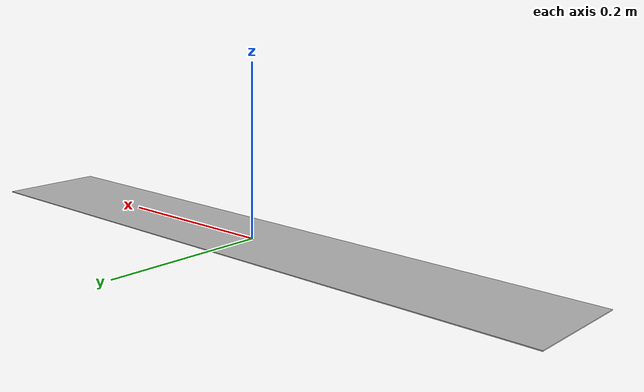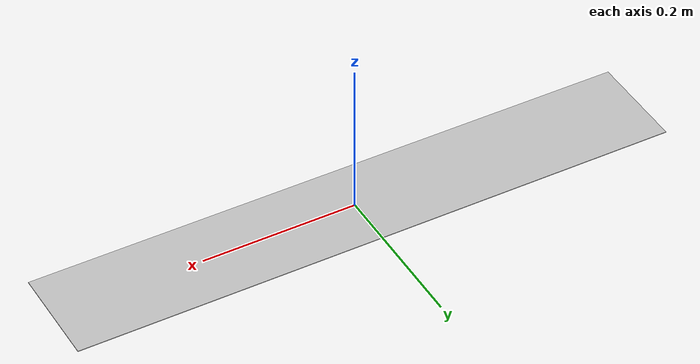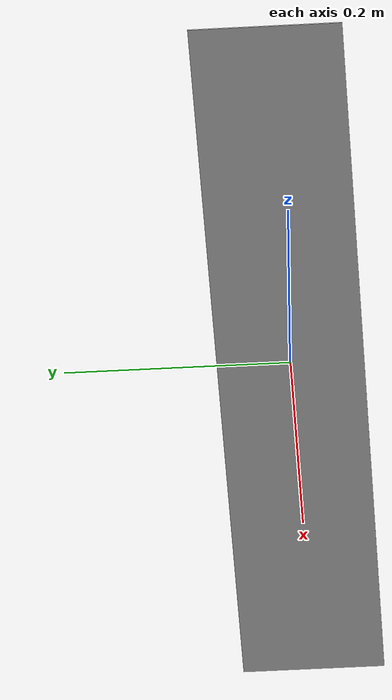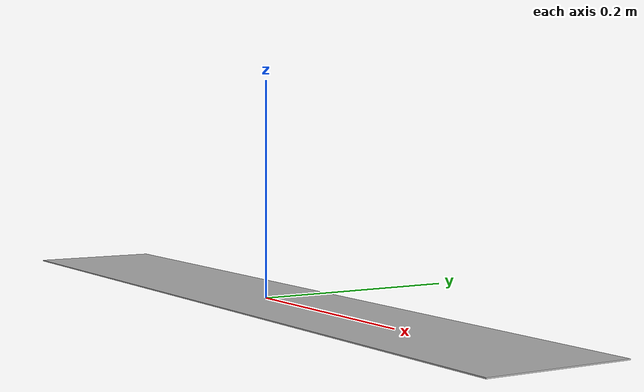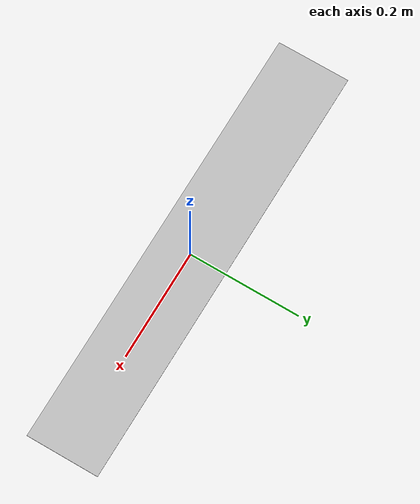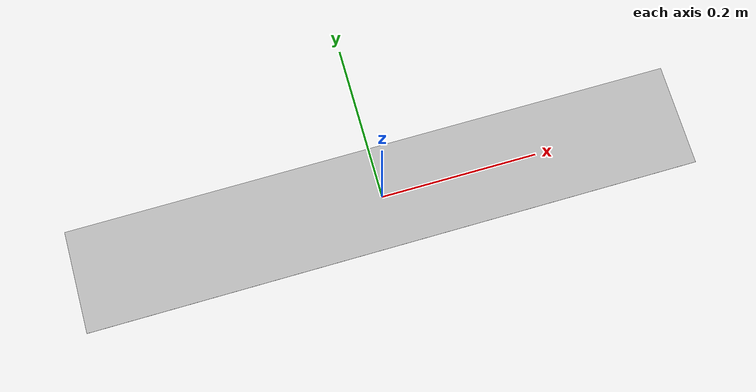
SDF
<?xml version='1.0'?>
<sdf version='1.5'>
  <model name='aruco_board_finish'>

    <link name='marker'>
      <pose frame=''>0 0 0 0 0 0</pose>
      <visual name='visual'>
        <geometry>
          <box>
            <size>0.78 0.13 0.001</size>
          </box>
        </geometry>
        <material>
          <script>
            <uri>model://aruco_board_finish/materials/scripts</uri>
            <uri>model://aruco_board_finish/materials/textures</uri>
            <name>ArucoBoardFinish/Marker</name>
          </script>
        </material>
        <pose frame=''>0 0 0 0 -0 0</pose>
        <cast_shadows>false</cast_shadows>
        <transparency>false</transparency>
      </visual>
    </link>
    <static>true</static>
    <allow_auto_disable>true</allow_auto_disable>
  </model>
</sdf>
